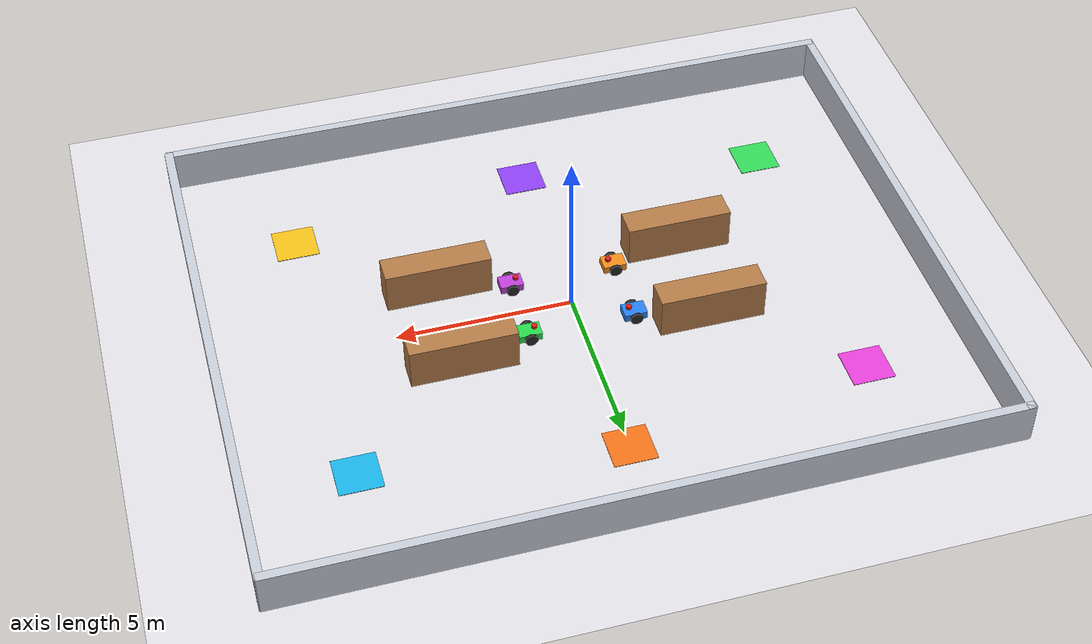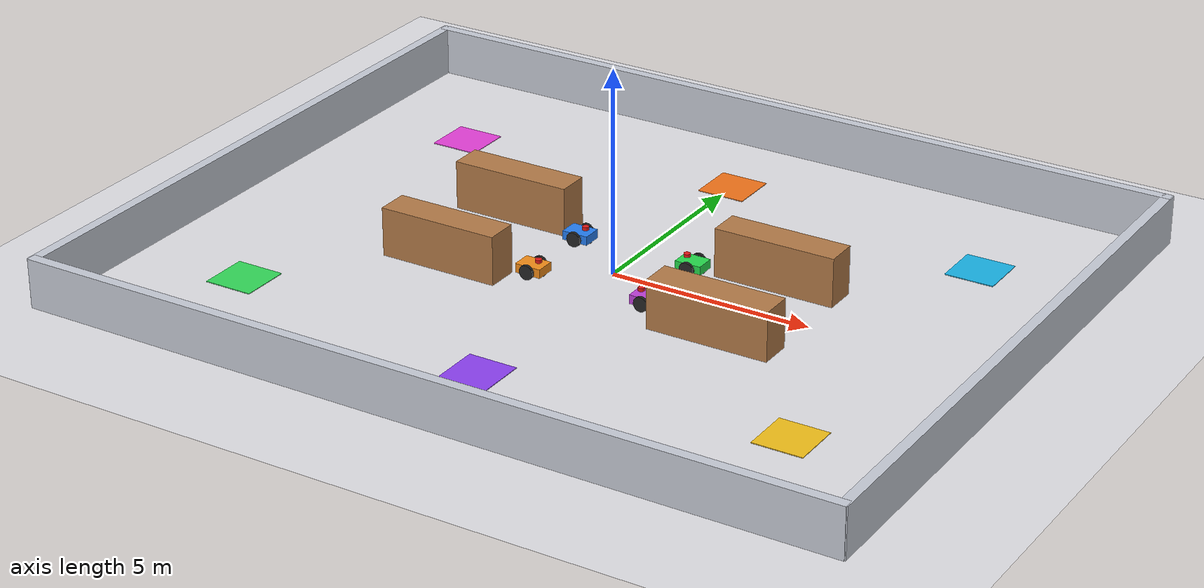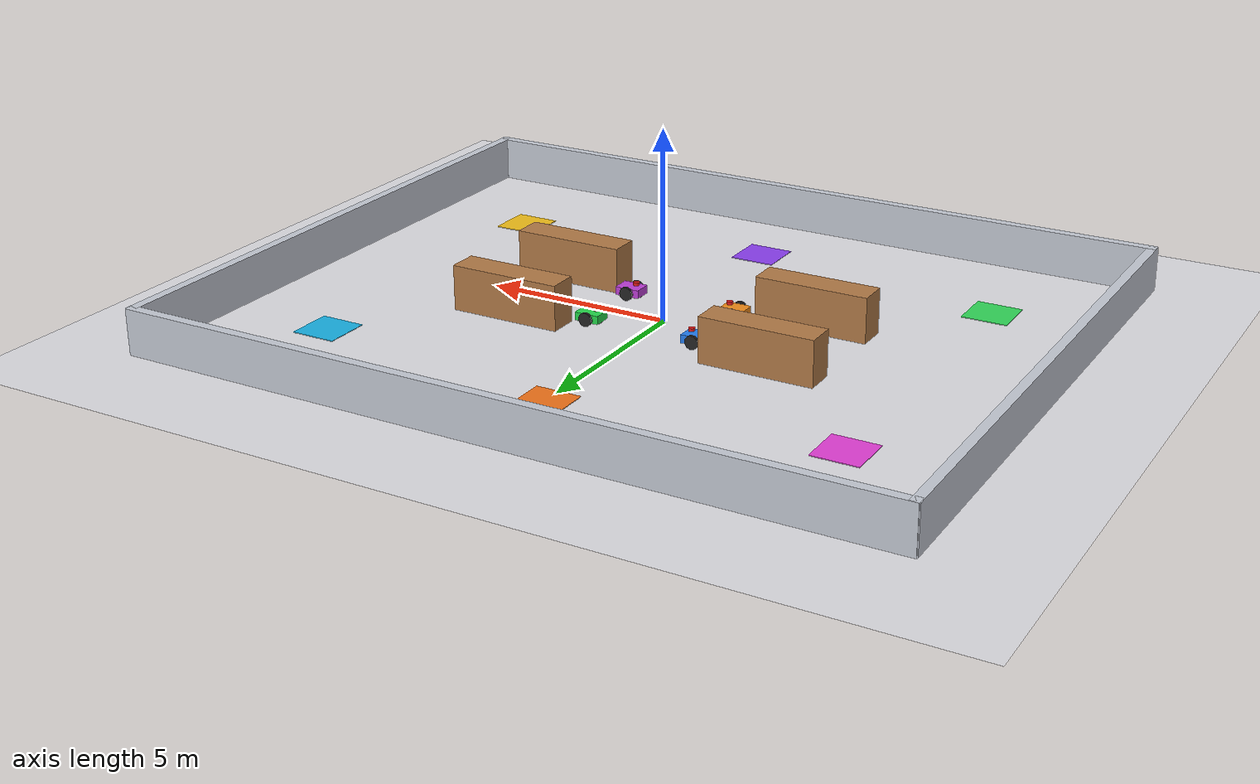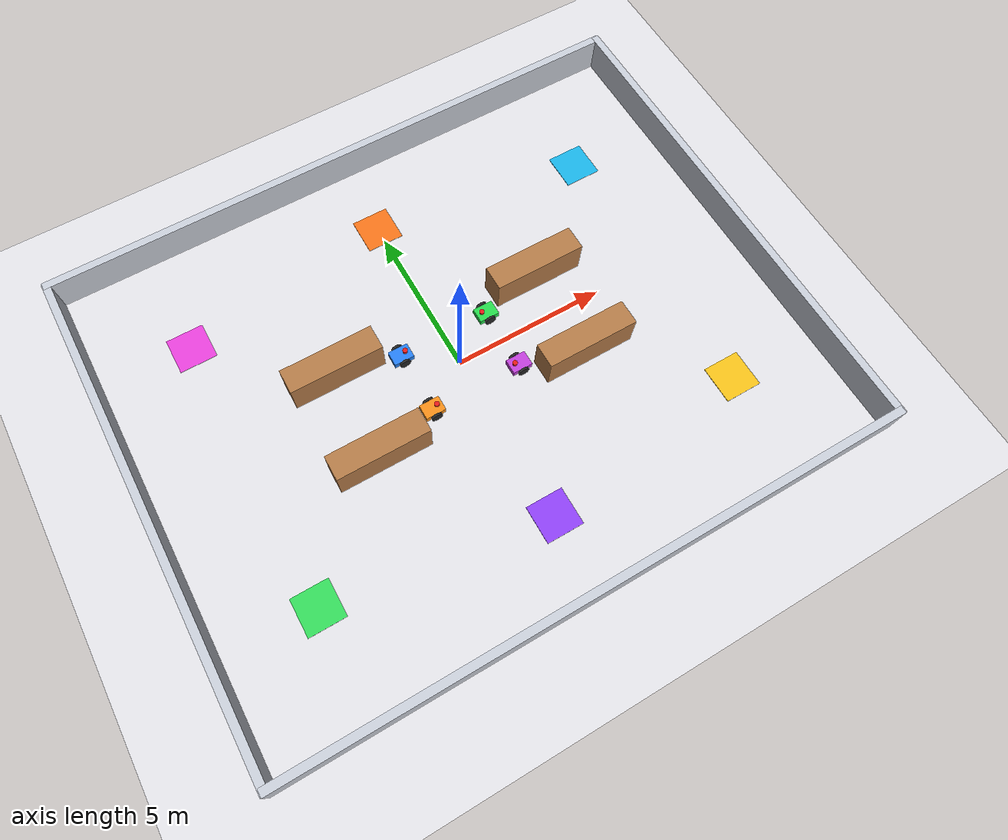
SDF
<?xml version="1.0" ?>
<sdf version="1.9">
  <world name="problem3_fleet_world">
    <physics name="1ms" type="ignored">
      <max_step_size>0.001</max_step_size>
      <real_time_factor>1.0</real_time_factor>
    </physics>
    <plugin filename="gz-sim-physics-system" name="gz::sim::systems::Physics"/>
    <plugin filename="gz-sim-user-commands-system" name="gz::sim::systems::UserCommands"/>
    <plugin filename="gz-sim-scene-broadcaster-system" name="gz::sim::systems::SceneBroadcaster"/>
    <plugin filename="gz-sim-sensors-system" name="gz::sim::systems::Sensors">
      <render_engine>ogre</render_engine>
    </plugin>

    <scene>
      <ambient>1.0 1.0 1.0 1</ambient>
      <background>0.92 0.94 0.96 1</background>
      <shadows>false</shadows>
    </scene>
    <light type="directional" name="sun">
      <diffuse>1 1 1 1</diffuse>
      <specular>0.4 0.4 0.4 1</specular>
      <direction>-0.5 0.5 -1</direction>
    </light>

    <!-- Ground Plane -->
    <model name="ground_plane">
      <static>true</static>
      <link name="link">
        <collision name="collision"><geometry><plane><normal>0 0 1</normal><size>45 45</size></plane></geometry></collision>
        <visual name="visual">
          <geometry><plane><normal>0 0 1</normal><size>45 45</size></plane></geometry>
          <material>
            <ambient>0.88 0.88 0.90 1</ambient>
            <diffuse>0.88 0.88 0.90 1</diffuse>
          </material>
        </visual>
      </link>
    </model>

    <!-- Outer Perimeter (20m x 16m) with Ambient and Diffuse to Prevent Black Shading -->
    <model name="wall_n">
      <static>true</static><pose>0 8.0 0.6 0 0 0</pose>
      <link name="l">
        <visual name="v"><geometry><box><size>20.2 0.25 1.2</size></box></geometry>
          <material><ambient>0.78 0.80 0.84 1</ambient><diffuse>0.78 0.80 0.84 1</diffuse></material>
        </visual>
        <collision name="c"><geometry><box><size>20.2 0.25 1.2</size></box></geometry></collision>
      </link>
    </model>
    <model name="wall_s">
      <static>true</static><pose>0 -8.0 0.6 0 0 0</pose>
      <link name="l">
        <visual name="v"><geometry><box><size>20.2 0.25 1.2</size></box></geometry>
          <material><ambient>0.78 0.80 0.84 1</ambient><diffuse>0.78 0.80 0.84 1</diffuse></material>
        </visual>
        <collision name="c"><geometry><box><size>20.2 0.25 1.2</size></box></geometry></collision>
      </link>
    </model>
    <model name="wall_e">
      <static>true</static><pose>10.0 0 0.6 0 0 0</pose>
      <link name="l">
        <visual name="v"><geometry><box><size>0.25 16.2 1.2</size></box></geometry>
          <material><ambient>0.78 0.80 0.84 1</ambient><diffuse>0.78 0.80 0.84 1</diffuse></material>
        </visual>
        <collision name="c"><geometry><box><size>0.25 16.2 1.2</size></box></geometry></collision>
      </link>
    </model>
    <model name="wall_w">
      <static>true</static><pose>-10.0 0 0.6 0 0 0</pose>
      <link name="l">
        <visual name="v"><geometry><box><size>0.25 16.2 1.2</size></box></geometry>
          <material><ambient>0.78 0.80 0.84 1</ambient><diffuse>0.78 0.80 0.84 1</diffuse></material>
        </visual>
        <collision name="c"><geometry><box><size>0.25 16.2 1.2</size></box></geometry></collision>
      </link>
    </model>

    <!-- Task Stations (Depots A to F) -->
    <model name="depot_a"><static>true</static><pose>7.0 4.5 0.01 0 0 0</pose><link name="l"><visual name="v"><geometry><box><size>1.2 1.2 0.02</size></box></geometry><material><ambient>0.1 0.7 0.9 1</ambient><diffuse>0.1 0.7 0.9 1</diffuse></material></visual></link></model>
    <model name="depot_b"><static>true</static><pose>7.0 -4.5 0.01 0 0 0</pose><link name="l"><visual name="v"><geometry><box><size>1.2 1.2 0.02</size></box></geometry><material><ambient>0.95 0.75 0.1 1</ambient><diffuse>0.95 0.75 0.1 1</diffuse></material></visual></link></model>
    <model name="depot_c"><static>true</static><pose>-7.0 -4.5 0.01 0 0 0</pose><link name="l"><visual name="v"><geometry><box><size>1.2 1.2 0.02</size></box></geometry><material><ambient>0.2 0.85 0.35 1</ambient><diffuse>0.2 0.85 0.35 1</diffuse></material></visual></link></model>
    <model name="depot_d"><static>true</static><pose>-7.0 4.5 0.01 0 0 0</pose><link name="l"><visual name="v"><geometry><box><size>1.2 1.2 0.02</size></box></geometry><material><ambient>0.9 0.25 0.85 1</ambient><diffuse>0.9 0.25 0.85 1</diffuse></material></visual></link></model>
    <model name="depot_e"><static>true</static><pose>0.0 5.5 0.01 0 0 0</pose><link name="l"><visual name="v"><geometry><box><size>1.2 1.2 0.02</size></box></geometry><material><ambient>0.95 0.45 0.1 1</ambient><diffuse>0.95 0.45 0.1 1</diffuse></material></visual></link></model>
    <model name="depot_f"><static>true</static><pose>0.0 -5.5 0.01 0 0 0</pose><link name="l"><visual name="v"><geometry><box><size>1.2 1.2 0.02</size></box></geometry><material><ambient>0.55 0.25 0.95 1</ambient><diffuse>0.55 0.25 0.95 1</diffuse></material></visual></link></model>

    <!-- Interior Storage Racks & Barriers (Warm Wood / Industrial Storage with Ambient + Diffuse) -->
    <model name="rack_1">
      <static>true</static><pose>3.5 1.5 0.6 0 0 0</pose>
      <link name="l">
        <visual name="v"><geometry><box><size>3.0 0.8 1.2</size></box></geometry>
          <material><ambient>0.7 0.48 0.28 1</ambient><diffuse>0.7 0.48 0.28 1</diffuse></material>
        </visual>
        <collision name="c"><geometry><box><size>3.0 0.8 1.2</size></box></geometry></collision>
      </link>
    </model>
    <model name="rack_2">
      <static>true</static><pose>3.5 -1.5 0.6 0 0 0</pose>
      <link name="l">
        <visual name="v"><geometry><box><size>3.0 0.8 1.2</size></box></geometry>
          <material><ambient>0.7 0.48 0.28 1</ambient><diffuse>0.7 0.48 0.28 1</diffuse></material>
        </visual>
        <collision name="c"><geometry><box><size>3.0 0.8 1.2</size></box></geometry></collision>
      </link>
    </model>
    <model name="rack_3">
      <static>true</static><pose>-3.5 1.5 0.6 0 0 0</pose>
      <link name="l">
        <visual name="v"><geometry><box><size>3.0 0.8 1.2</size></box></geometry>
          <material><ambient>0.7 0.48 0.28 1</ambient><diffuse>0.7 0.48 0.28 1</diffuse></material>
        </visual>
        <collision name="c"><geometry><box><size>3.0 0.8 1.2</size></box></geometry></collision>
      </link>
    </model>
    <model name="rack_4">
      <static>true</static><pose>-3.5 -1.5 0.6 0 0 0</pose>
      <link name="l">
        <visual name="v"><geometry><box><size>3.0 0.8 1.2</size></box></geometry>
          <material><ambient>0.7 0.48 0.28 1</ambient><diffuse>0.7 0.48 0.28 1</diffuse></material>
        </visual>
        <collision name="c"><geometry><box><size>3.0 0.8 1.2</size></box></geometry></collision>
      </link>
    </model>

    <!-- 4 Autonomous Mobile Robots -->
    <!-- ROBOT 1 (Blue) -->
    <model name="robot1">
      <pose>-1.5 1.0 0.22 0 0 0</pose>
      <link name="base_link">
        <inertial><mass>1.2</mass><inertia><ixx>0.04</ixx><iyy>0.08</iyy><izz>0.10</izz></inertia></inertial>
        <collision name="c"><geometry><box><size>0.65 0.48 0.22</size></box></geometry></collision>
        <visual name="v"><geometry><box><size>0.65 0.48 0.22</size></box></geometry>
          <material><ambient>0.15 0.5 0.95 1</ambient><diffuse>0.15 0.5 0.95 1</diffuse></material>
        </visual>
      </link>
      <link name="left_wheel"><pose>0 0.28 -0.02 0 0 0</pose><collision name="c"><pose>0 0 0 1.5708 0 0</pose><geometry><cylinder><radius>0.18</radius><length>0.07</length></cylinder></geometry></collision><visual name="v"><pose>0 0 0 1.5708 0 0</pose><geometry><cylinder><radius>0.18</radius><length>0.07</length></cylinder></geometry><material><ambient>0.15 0.15 0.15 1</ambient><diffuse>0.15 0.15 0.15 1</diffuse></material></visual></link>
      <link name="right_wheel"><pose>0 -0.28 -0.02 0 0 0</pose><collision name="c"><pose>0 0 0 1.5708 0 0</pose><geometry><cylinder><radius>0.18</radius><length>0.07</length></cylinder></geometry></collision><visual name="v"><pose>0 0 0 1.5708 0 0</pose><geometry><cylinder><radius>0.18</radius><length>0.07</length></cylinder></geometry><material><ambient>0.15 0.15 0.15 1</ambient><diffuse>0.15 0.15 0.15 1</diffuse></material></visual></link>
      <link name="caster_f"><pose>0.24 0 -0.10 0 0 0</pose><collision name="c"><geometry><sphere><radius>0.08</radius></sphere></geometry><surface><friction><ode><mu>0.01</mu><mu2>0.01</mu2></ode></friction></surface></collision><visual name="v"><geometry><sphere><radius>0.08</radius></sphere></geometry><material><ambient>0.3 0.3 0.3 1</ambient><diffuse>0.3 0.3 0.3 1</diffuse></material></visual></link>
      <link name="caster_r"><pose>-0.24 0 -0.10 0 0 0</pose><collision name="c"><geometry><sphere><radius>0.08</radius></sphere></geometry><surface><friction><ode><mu>0.01</mu><mu2>0.01</mu2></ode></friction></surface></collision><visual name="v"><geometry><sphere><radius>0.08</radius></sphere></geometry><material><ambient>0.3 0.3 0.3 1</ambient><diffuse>0.3 0.3 0.3 1</diffuse></material></visual></link>
      <link name="lidar_link"><pose>0.15 0 0.20 0 0 0</pose><visual name="v"><geometry><cylinder><radius>0.08</radius><length>0.08</length></cylinder></geometry><material><ambient>0.9 0.1 0.1 1</ambient><diffuse>0.9 0.1 0.1 1</diffuse></material></visual>
        <sensor name="lidar" type="gpu_lidar"><always_on>true</always_on><update_rate>10</update_rate><topic>/robot1/scan</topic>
          <lidar><scan><horizontal><samples>180</samples><resolution>1</resolution><min_angle>-3.14159</min_angle><max_angle>3.14159</max_angle></horizontal></scan><range><min>0.25</min><max>8.0</max></range></lidar>
        </sensor>
      </link>
      <joint name="lwj1" type="revolute"><parent>base_link</parent><child>left_wheel</child><axis><xyz>0 1 0</xyz></axis></joint>
      <joint name="rwj1" type="revolute"><parent>base_link</parent><child>right_wheel</child><axis><xyz>0 1 0</xyz></axis></joint>
      <joint name="cfj1" type="fixed"><parent>base_link</parent><child>caster_f</child></joint>
      <joint name="crj1" type="fixed"><parent>base_link</parent><child>caster_r</child></joint>
      <joint name="lj1" type="fixed"><parent>base_link</parent><child>lidar_link</child></joint>
      <plugin filename="gz-sim-diff-drive-system" name="gz::sim::systems::DiffDrive">
        <left_joint>lwj1</left_joint><right_joint>rwj1</right_joint><wheel_separation>0.56</wheel_separation><wheel_radius>0.18</wheel_radius>
        <odom_topic>/robot1/odometry</odom_topic><topic>/robot1/cmd_vel</topic>
      </plugin>
    </model>

    <!-- ROBOT 2 (Green) -->
    <model name="robot2">
      <pose>1.5 1.0 0.22 0 0 3.1415</pose>
      <link name="base_link">
        <inertial><mass>1.2</mass><inertia><ixx>0.04</ixx><iyy>0.08</iyy><izz>0.10</izz></inertia></inertial>
        <collision name="c"><geometry><box><size>0.65 0.48 0.22</size></box></geometry></collision>
        <visual name="v"><geometry><box><size>0.65 0.48 0.22</size></box></geometry>
          <material><ambient>0.15 0.85 0.3 1</ambient><diffuse>0.15 0.85 0.3 1</diffuse></material>
        </visual>
      </link>
      <link name="left_wheel"><pose>0 0.28 -0.02 0 0 0</pose><collision name="c"><pose>0 0 0 1.5708 0 0</pose><geometry><cylinder><radius>0.18</radius><length>0.07</length></cylinder></geometry></collision><visual name="v"><pose>0 0 0 1.5708 0 0</pose><geometry><cylinder><radius>0.18</radius><length>0.07</length></cylinder></geometry><material><ambient>0.15 0.15 0.15 1</ambient><diffuse>0.15 0.15 0.15 1</diffuse></material></visual></link>
      <link name="right_wheel"><pose>0 -0.28 -0.02 0 0 0</pose><collision name="c"><pose>0 0 0 1.5708 0 0</pose><geometry><cylinder><radius>0.18</radius><length>0.07</length></cylinder></geometry></collision><visual name="v"><pose>0 0 0 1.5708 0 0</pose><geometry><cylinder><radius>0.18</radius><length>0.07</length></cylinder></geometry><material><ambient>0.15 0.15 0.15 1</ambient><diffuse>0.15 0.15 0.15 1</diffuse></material></visual></link>
      <link name="caster_f"><pose>0.24 0 -0.10 0 0 0</pose><collision name="c"><geometry><sphere><radius>0.08</radius></sphere></geometry><surface><friction><ode><mu>0.01</mu><mu2>0.01</mu2></ode></friction></surface></collision><visual name="v"><geometry><sphere><radius>0.08</radius></sphere></geometry><material><ambient>0.3 0.3 0.3 1</ambient><diffuse>0.3 0.3 0.3 1</diffuse></material></visual></link>
      <link name="caster_r"><pose>-0.24 0 -0.10 0 0 0</pose><collision name="c"><geometry><sphere><radius>0.08</radius></sphere></geometry><surface><friction><ode><mu>0.01</mu><mu2>0.01</mu2></ode></friction></surface></collision><visual name="v"><geometry><sphere><radius>0.08</radius></sphere></geometry><material><ambient>0.3 0.3 0.3 1</ambient><diffuse>0.3 0.3 0.3 1</diffuse></material></visual></link>
      <link name="lidar_link"><pose>0.15 0 0.20 0 0 0</pose><visual name="v"><geometry><cylinder><radius>0.08</radius><length>0.08</length></cylinder></geometry><material><ambient>0.9 0.1 0.1 1</ambient><diffuse>0.9 0.1 0.1 1</diffuse></material></visual>
        <sensor name="lidar" type="gpu_lidar"><always_on>true</always_on><update_rate>10</update_rate><topic>/robot2/scan</topic>
          <lidar><scan><horizontal><samples>180</samples><resolution>1</resolution><min_angle>-3.14159</min_angle><max_angle>3.14159</max_angle></horizontal></scan><range><min>0.25</min><max>8.0</max></range></lidar>
        </sensor>
      </link>
      <joint name="lwj2" type="revolute"><parent>base_link</parent><child>left_wheel</child><axis><xyz>0 1 0</xyz></axis></joint>
      <joint name="rwj2" type="revolute"><parent>base_link</parent><child>right_wheel</child><axis><xyz>0 1 0</xyz></axis></joint>
      <joint name="cfj2" type="fixed"><parent>base_link</parent><child>caster_f</child></joint>
      <joint name="crj2" type="fixed"><parent>base_link</parent><child>caster_r</child></joint>
      <joint name="lj2" type="fixed"><parent>base_link</parent><child>lidar_link</child></joint>
      <plugin filename="gz-sim-diff-drive-system" name="gz::sim::systems::DiffDrive">
        <left_joint>lwj2</left_joint><right_joint>rwj2</right_joint><wheel_separation>0.56</wheel_separation><wheel_radius>0.18</wheel_radius>
        <odom_topic>/robot2/odometry</odom_topic><topic>/robot2/cmd_vel</topic>
      </plugin>
    </model>

    <!-- ROBOT 3 (Orange) -->
    <model name="robot3">
      <pose>-1.5 -1.0 0.22 0 0 0</pose>
      <link name="base_link">
        <inertial><mass>1.2</mass><inertia><ixx>0.04</ixx><iyy>0.08</iyy><izz>0.10</izz></inertia></inertial>
        <collision name="c"><geometry><box><size>0.65 0.48 0.22</size></box></geometry></collision>
        <visual name="v"><geometry><box><size>0.65 0.48 0.22</size></box></geometry>
          <material><ambient>0.95 0.55 0.1 1</ambient><diffuse>0.95 0.55 0.1 1</diffuse></material>
        </visual>
      </link>
      <link name="left_wheel"><pose>0 0.28 -0.02 0 0 0</pose><collision name="c"><pose>0 0 0 1.5708 0 0</pose><geometry><cylinder><radius>0.18</radius><length>0.07</length></cylinder></geometry></collision><visual name="v"><pose>0 0 0 1.5708 0 0</pose><geometry><cylinder><radius>0.18</radius><length>0.07</length></cylinder></geometry><material><ambient>0.15 0.15 0.15 1</ambient><diffuse>0.15 0.15 0.15 1</diffuse></material></visual></link>
      <link name="right_wheel"><pose>0 -0.28 -0.02 0 0 0</pose><collision name="c"><pose>0 0 0 1.5708 0 0</pose><geometry><cylinder><radius>0.18</radius><length>0.07</length></cylinder></geometry></collision><visual name="v"><pose>0 0 0 1.5708 0 0</pose><geometry><cylinder><radius>0.18</radius><length>0.07</length></cylinder></geometry><material><ambient>0.15 0.15 0.15 1</ambient><diffuse>0.15 0.15 0.15 1</diffuse></material></visual></link>
      <link name="caster_f"><pose>0.24 0 -0.10 0 0 0</pose><collision name="c"><geometry><sphere><radius>0.08</radius></sphere></geometry><surface><friction><ode><mu>0.01</mu><mu2>0.01</mu2></ode></friction></surface></collision><visual name="v"><geometry><sphere><radius>0.08</radius></sphere></geometry><material><ambient>0.3 0.3 0.3 1</ambient><diffuse>0.3 0.3 0.3 1</diffuse></material></visual></link>
      <link name="caster_r"><pose>-0.24 0 -0.10 0 0 0</pose><collision name="c"><geometry><sphere><radius>0.08</radius></sphere></geometry><surface><friction><ode><mu>0.01</mu><mu2>0.01</mu2></ode></friction></surface></collision><visual name="v"><geometry><sphere><radius>0.08</radius></sphere></geometry><material><ambient>0.3 0.3 0.3 1</ambient><diffuse>0.3 0.3 0.3 1</diffuse></material></visual></link>
      <link name="lidar_link"><pose>0.15 0 0.20 0 0 0</pose><visual name="v"><geometry><cylinder><radius>0.08</radius><length>0.08</length></cylinder></geometry><material><ambient>0.9 0.1 0.1 1</ambient><diffuse>0.9 0.1 0.1 1</diffuse></material></visual>
        <sensor name="lidar" type="gpu_lidar"><always_on>true</always_on><update_rate>10</update_rate><topic>/robot3/scan</topic>
          <lidar><scan><horizontal><samples>180</samples><resolution>1</resolution><min_angle>-3.14159</min_angle><max_angle>3.14159</max_angle></horizontal></scan><range><min>0.25</min><max>8.0</max></range></lidar>
        </sensor>
      </link>
      <joint name="lwj3" type="revolute"><parent>base_link</parent><child>left_wheel</child><axis><xyz>0 1 0</xyz></axis></joint>
      <joint name="rwj3" type="revolute"><parent>base_link</parent><child>right_wheel</child><axis><xyz>0 1 0</xyz></axis></joint>
      <joint name="cfj3" type="fixed"><parent>base_link</parent><child>caster_f</child></joint>
      <joint name="crj3" type="fixed"><parent>base_link</parent><child>caster_r</child></joint>
      <joint name="lj3" type="fixed"><parent>base_link</parent><child>lidar_link</child></joint>
      <plugin filename="gz-sim-diff-drive-system" name="gz::sim::systems::DiffDrive">
        <left_joint>lwj3</left_joint><right_joint>rwj3</right_joint><wheel_separation>0.56</wheel_separation><wheel_radius>0.18</wheel_radius>
        <odom_topic>/robot3/odometry</odom_topic><topic>/robot3/cmd_vel</topic>
      </plugin>
    </model>

    <!-- ROBOT 4 (Purple) -->
    <model name="robot4">
      <pose>1.5 -1.0 0.22 0 0 3.1415</pose>
      <link name="base_link">
        <inertial><mass>1.2</mass><inertia><ixx>0.04</ixx><iyy>0.08</iyy><izz>0.10</izz></inertia></inertial>
        <collision name="c"><geometry><box><size>0.65 0.48 0.22</size></box></geometry></collision>
        <visual name="v"><geometry><box><size>0.65 0.48 0.22</size></box></geometry>
          <material><ambient>0.75 0.25 0.85 1</ambient><diffuse>0.75 0.25 0.85 1</diffuse></material>
        </visual>
      </link>
      <link name="left_wheel"><pose>0 0.28 -0.02 0 0 0</pose><collision name="c"><pose>0 0 0 1.5708 0 0</pose><geometry><cylinder><radius>0.18</radius><length>0.07</length></cylinder></geometry></collision><visual name="v"><pose>0 0 0 1.5708 0 0</pose><geometry><cylinder><radius>0.18</radius><length>0.07</length></cylinder></geometry><material><ambient>0.15 0.15 0.15 1</ambient><diffuse>0.15 0.15 0.15 1</diffuse></material></visual></link>
      <link name="right_wheel"><pose>0 -0.28 -0.02 0 0 0</pose><collision name="c"><pose>0 0 0 1.5708 0 0</pose><geometry><cylinder><radius>0.18</radius><length>0.07</length></cylinder></geometry></collision><visual name="v"><pose>0 0 0 1.5708 0 0</pose><geometry><cylinder><radius>0.18</radius><length>0.07</length></cylinder></geometry><material><ambient>0.15 0.15 0.15 1</ambient><diffuse>0.15 0.15 0.15 1</diffuse></material></visual></link>
      <link name="caster_f"><pose>0.24 0 -0.10 0 0 0</pose><collision name="c"><geometry><sphere><radius>0.08</radius></sphere></geometry><surface><friction><ode><mu>0.01</mu><mu2>0.01</mu2></ode></friction></surface></collision><visual name="v"><geometry><sphere><radius>0.08</radius></sphere></geometry><material><ambient>0.3 0.3 0.3 1</ambient><diffuse>0.3 0.3 0.3 1</diffuse></material></visual></link>
      <link name="caster_r"><pose>-0.24 0 -0.10 0 0 0</pose><collision name="c"><geometry><sphere><radius>0.08</radius></sphere></geometry><surface><friction><ode><mu>0.01</mu><mu2>0.01</mu2></ode></friction></surface></collision><visual name="v"><geometry><sphere><radius>0.08</radius></sphere></geometry><material><ambient>0.3 0.3 0.3 1</ambient><diffuse>0.3 0.3 0.3 1</diffuse></material></visual></link>
      <link name="lidar_link"><pose>0.15 0 0.20 0 0 0</pose><visual name="v"><geometry><cylinder><radius>0.08</radius><length>0.08</length></cylinder></geometry><material><ambient>0.9 0.1 0.1 1</ambient><diffuse>0.9 0.1 0.1 1</diffuse></material></visual>
        <sensor name="lidar" type="gpu_lidar"><always_on>true</always_on><update_rate>10</update_rate><topic>/robot4/scan</topic>
          <lidar><scan><horizontal><samples>180</samples><resolution>1</resolution><min_angle>-3.14159</min_angle><max_angle>3.14159</max_angle></horizontal></scan><range><min>0.25</min><max>8.0</max></range></lidar>
        </sensor>
      </link>
      <joint name="lwj4" type="revolute"><parent>base_link</parent><child>left_wheel</child><axis><xyz>0 1 0</xyz></axis></joint>
      <joint name="rwj4" type="revolute"><parent>base_link</parent><child>right_wheel</child><axis><xyz>0 1 0</xyz></axis></joint>
      <joint name="cfj4" type="fixed"><parent>base_link</parent><child>caster_f</child></joint>
      <joint name="crj4" type="fixed"><parent>base_link</parent><child>caster_r</child></joint>
      <joint name="lj4" type="fixed"><parent>base_link</parent><child>lidar_link</child></joint>
      <plugin filename="gz-sim-diff-drive-system" name="gz::sim::systems::DiffDrive">
        <left_joint>lwj4</left_joint><right_joint>rwj4</right_joint><wheel_separation>0.56</wheel_separation><wheel_radius>0.18</wheel_radius>
        <odom_topic>/robot4/odometry</odom_topic><topic>/robot4/cmd_vel</topic>
      </plugin>
    </model>
  </world>
</sdf>
